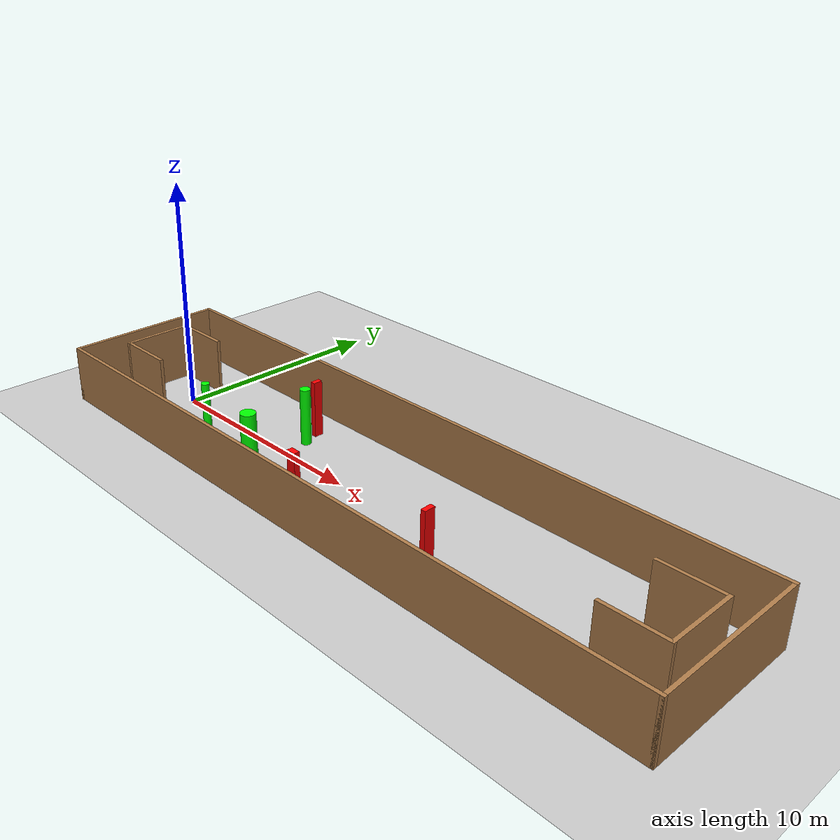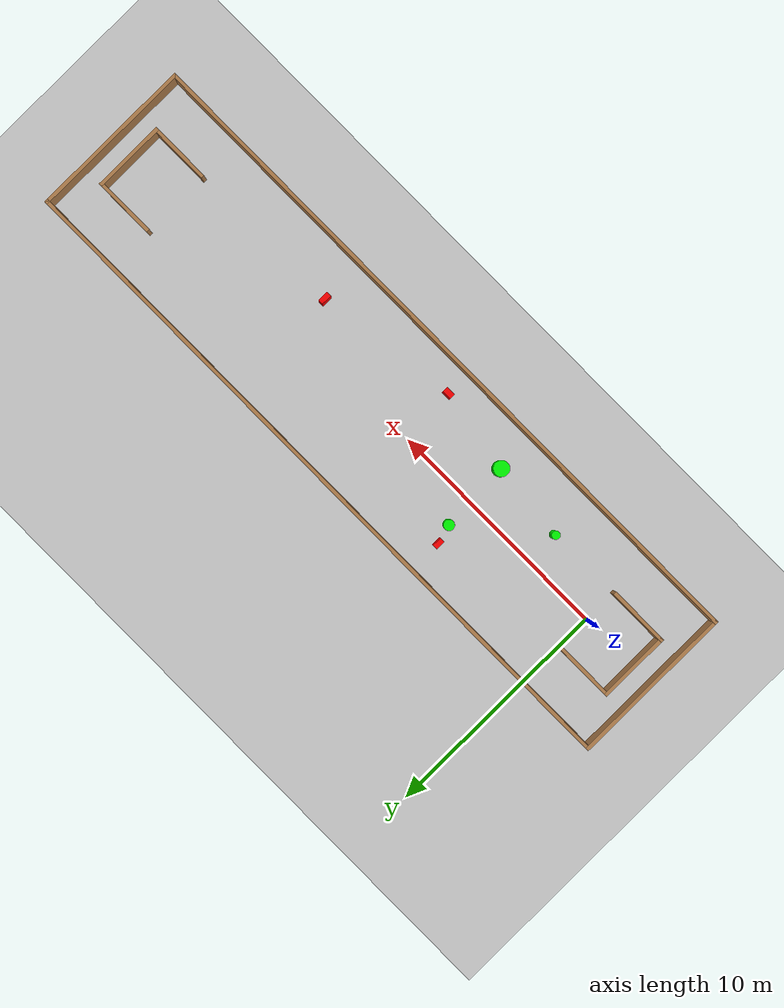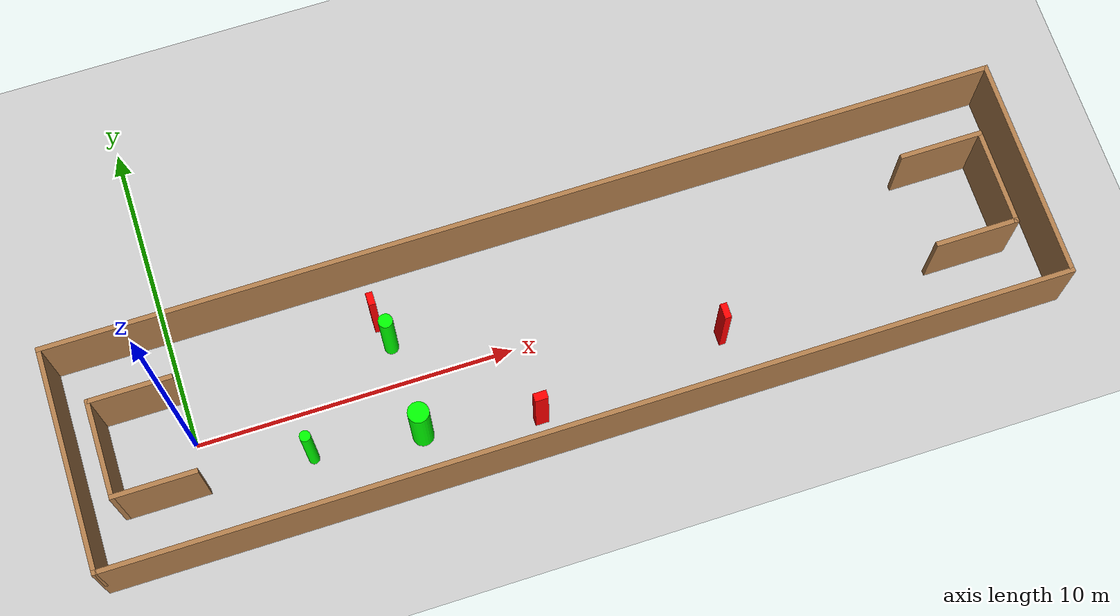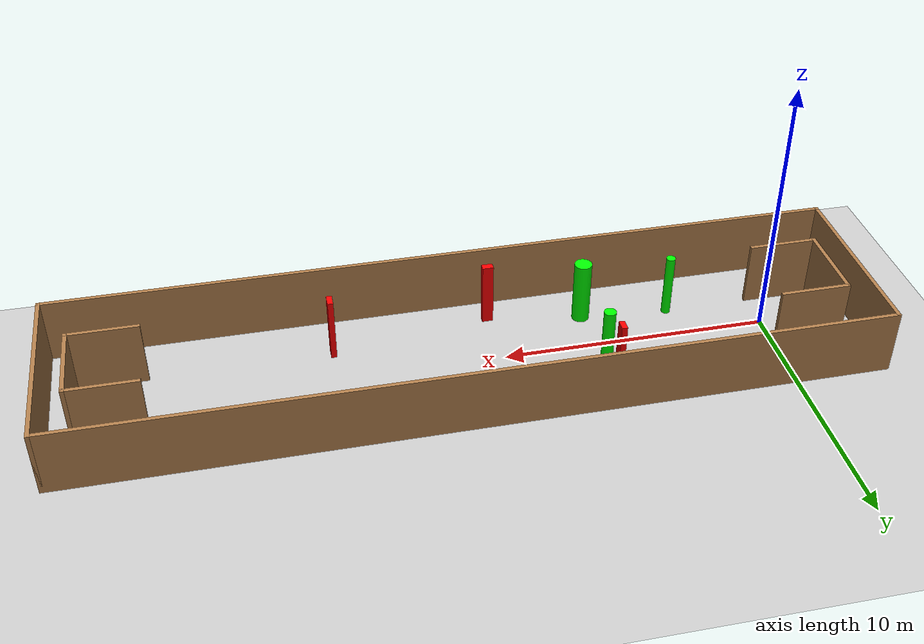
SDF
<sdf version="1.7">
 <world name="default">
  <light name="sun" type="directional">
   <pose>0 0 10 0 -0 0</pose>
   <diffuse>0.8 0.8 0.8 1</diffuse>
   <specular>0.2 0.2 0.2 1</specular>
   <attenuation>
    <range>1000</range>
    <constant>0.9</constant>
    <linear>0.01</linear>
    <quadratic>0.001</quadratic>
   </attenuation>
   <direction>-0.5 0.1 -0.9</direction>
   <spot><inner_angle>0</inner_angle><outer_angle>0</outer_angle><falloff>0</falloff></spot>
  </light>
  <model name="ground_plane">
   <static>1</static>
   <link name="link">
    <collision name="collision">
     <geometry><plane><normal>0 0 1</normal><size>100 100</size></plane></geometry>
     <surface>
      <contact><collide_bitmask>65535</collide_bitmask></contact>
      <friction><ode><mu>100</mu><mu2>50</mu2></ode></friction>
     </surface>
    </collision>
    <visual name="visual">
     <cast_shadows>0</cast_shadows>
     <geometry><plane><normal>0 0 1</normal><size>100 100</size></plane></geometry>
     <material>
      <script><uri>file://media/materials/scripts/gazebo.material</uri><name>Gazebo/Grey</name></script>
     </material>
    </visual>
   </link>
  </model>
  <gravity>0 0 -9.8</gravity>
  <magnetic_field>6e-06 2.3e-05 -4.2e-05</magnetic_field>
  <atmosphere type="adiabatic"/>
  <physics type="ode">
   <max_step_size>0.001</max_step_size>
   <real_time_factor>1</real_time_factor>
   <real_time_update_rate>1000</real_time_update_rate>
  </physics>
  <scene><ambient>0.4 0.4 0.4 1</ambient><background>0.7 0.7 0.7 1</background><shadows>1</shadows></scene>
  <spherical_coordinates>
   <surface_model>EARTH_WGS84</surface_model>
   <latitude_deg>0</latitude_deg>
   <longitude_deg>0</longitude_deg>
   <elevation>0</elevation>
   <heading_deg>0</heading_deg>
  </spherical_coordinates>
  <model name="my_base_walls">
   <link name="Wall_0">
    <collision name="Wall_0_Collision">
     <geometry><box><size>7.15 0.15 2.5</size></box></geometry>
     <pose>0 0 1.25 0 -0 0</pose>
    </collision>
    <visual name="Wall_0_Visual">
     <pose>0 0 1.25 0 -0 0</pose>
     <geometry><box><size>7.15 0.15 2.5</size></box></geometry>
     <material>
      <script><uri>file://media/materials/scripts/gazebo.material</uri><name>Gazebo/Wood</name></script>
      <ambient>1 1 1 1</ambient>
     </material>
     <meta><layer>0</layer></meta>
    </visual>
    <pose>-15 0 0 0 -0 1.5708</pose>
   </link>
   <link name="Wall_10">
    <collision name="Wall_10_Collision">
     <geometry><box><size>2.65 0.15 2.5</size></box></geometry>
     <pose>0 0 1.25 0 -0 0</pose>
    </collision>
    <visual name="Wall_10_Visual">
     <pose>0 0 1.25 0 -0 0</pose>
     <geometry><box><size>2.65 0.15 2.5</size></box></geometry>
     <material>
      <script><uri>file://media/materials/scripts/gazebo.material</uri><name>Gazebo/Wood</name></script>
      <ambient>1 1 1 1</ambient>
     </material>
     <meta><layer>0</layer></meta>
    </visual>
    <pose>-12.75 -1.5 0 0 -0 0</pose>
   </link>
   <link name="Wall_12">
    <collision name="Wall_12_Collision">
     <geometry><box><size>2.65 0.15 2.5</size></box></geometry>
     <pose>0 0 1.25 0 -0 0</pose>
    </collision>
    <visual name="Wall_12_Visual">
     <pose>0 0 1.25 0 -0 0</pose>
     <geometry><box><size>2.65 0.15 2.5</size></box></geometry>
     <material>
      <script><uri>file://media/materials/scripts/gazebo.material</uri><name>Gazebo/Wood</name></script>
      <ambient>1 1 1 1</ambient>
     </material>
     <meta><layer>0</layer></meta>
    </visual>
    <pose>-12.75 1.5 0 0 -0 0</pose>
   </link>
   <link name="Wall_14">
    <collision name="Wall_14_Collision">
     <geometry><box><size>3.15 0.15 2.5</size></box></geometry>
     <pose>0 0 1.25 0 -0 0</pose>
    </collision>
    <visual name="Wall_14_Visual">
     <pose>0 0 1.25 0 -0 0</pose>
     <geometry><box><size>3.15 0.15 2.5</size></box></geometry>
     <material>
      <script><uri>file://media/materials/scripts/gazebo.material</uri><name>Gazebo/Wood</name></script>
      <ambient>1 1 1 1</ambient>
     </material>
     <meta><layer>0</layer></meta>
    </visual>
    <pose>14 0 0 0 -0 -1.5708</pose>
   </link>
   <link name="Wall_15">
    <collision name="Wall_15_Collision">
     <geometry><box><size>2.65 0.15 2.5</size></box></geometry>
     <pose>0 0 1.25 0 -0 0</pose>
    </collision>
    <visual name="Wall_15_Visual">
     <pose>0 0 1.25 0 -0 0</pose>
     <geometry><box><size>2.65 0.15 2.5</size></box></geometry>
     <material>
      <script><uri>file://media/materials/scripts/gazebo.material</uri><name>Gazebo/Wood</name></script>
      <ambient>1 1 1 1</ambient>
     </material>
     <meta><layer>0</layer></meta>
    </visual>
    <pose>12.75 -1.5 0 0 -0 3.14159</pose>
   </link>
   <link name="Wall_17">
    <collision name="Wall_17_Collision">
     <geometry><box><size>2.65 0.15 2.5</size></box></geometry>
     <pose>0 0 1.25 0 -0 0</pose>
    </collision>
    <visual name="Wall_17_Visual">
     <pose>0 0 1.25 0 -0 0</pose>
     <geometry><box><size>2.65 0.15 2.5</size></box></geometry>
     <material>
      <script><uri>file://media/materials/scripts/gazebo.material</uri><name>Gazebo/Wood</name></script>
      <ambient>1 1 1 1</ambient>
     </material>
     <meta><layer>0</layer></meta>
    </visual>
    <pose>12.75 1.5 0 0 -0 3.14159</pose>
   </link>
   <link name="Wall_2">
    <collision name="Wall_2_Collision">
     <geometry><box><size>30.15 0.15 2.5</size></box></geometry>
     <pose>0 0 1.25 0 -0 0</pose>
    </collision>
    <visual name="Wall_2_Visual">
     <pose>0 0 1.25 0 -0 0</pose>
     <geometry><box><size>30.15 0.15 2.5</size></box></geometry>
     <material>
      <script><uri>file://media/materials/scripts/gazebo.material</uri><name>Gazebo/Wood</name></script>
      <ambient>1 1 1 1</ambient>
     </material>
     <meta><layer>0</layer></meta>
    </visual>
    <pose>-0 -3.5 0 0 -0 0</pose>
   </link>
   <link name="Wall_4">
    <collision name="Wall_4_Collision">
     <geometry><box><size>30.15 0.15 2.5</size></box></geometry>
     <pose>0 0 1.25 0 -0 0</pose>
    </collision>
    <visual name="Wall_4_Visual">
     <pose>0 0 1.25 0 -0 0</pose>
     <geometry><box><size>30.15 0.15 2.5</size></box></geometry>
     <material>
      <script><uri>file://media/materials/scripts/gazebo.material</uri><name>Gazebo/Wood</name></script>
      <ambient>1 1 1 1</ambient>
     </material>
     <meta><layer>0</layer></meta>
    </visual>
    <pose>-0 3.5 0 0 -0 0</pose>
   </link>
   <link name="Wall_6">
    <collision name="Wall_6_Collision">
     <geometry><box><size>7.15 0.15 2.5</size></box></geometry>
     <pose>0 0 1.25 0 -0 0</pose>
    </collision>
    <visual name="Wall_6_Visual">
     <pose>0 0 1.25 0 -0 0</pose>
     <geometry><box><size>7.15 0.15 2.5</size></box></geometry>
     <material>
      <script><uri>file://media/materials/scripts/gazebo.material</uri><name>Gazebo/Wood</name></script>
      <ambient>1 1 1 1</ambient>
     </material>
     <meta><layer>0</layer></meta>
    </visual>
    <pose>15 0 0 0 -0 -1.5708</pose>
   </link>
   <link name="Wall_9">
    <collision name="Wall_9_Collision">
     <geometry><box><size>3.15 0.15 2.5</size></box></geometry>
     <pose>0 0 1.25 0 -0 0</pose>
    </collision>
    <visual name="Wall_9_Visual">
     <pose>0 0 1.25 0 -0 0</pose>
     <geometry><box><size>3.15 0.15 2.5</size></box></geometry>
     <material>
      <script><uri>file://media/materials/scripts/gazebo.material</uri><name>Gazebo/Wood</name></script>
      <ambient>1 1 1 1</ambient>
     </material>
     <meta><layer>0</layer></meta>
    </visual>
    <pose>-14 0 0 0 -0 -1.5708</pose>
   </link>
   <static>1</static>
   <pose>11.5 0 0 0 -0 0</pose>
  </model>
  <model name="cylinder1">
   <static>1</static>
   <link name="link">
    <inertial>
     <mass>1</mass>
     <inertia><ixx>0.5</ixx><ixy>0</ixy><ixz>0</ixz><iyy>0.5</iyy><iyz>0</iyz><izz>1</izz></inertia>
    </inertial>
    <collision name="collision">
     <geometry><cylinder><radius>0.22451615352294346</radius><length>2.5</length></cylinder></geometry>
    </collision>
    <visual name="visual">
     <geometry><cylinder><radius>0.22451615352294346</radius><length>2.5</length></cylinder></geometry>
     <material>
      <ambient>0 1 0 1</ambient>
      <diffuse>0 1 0 1</diffuse>
      <specular>0.1 0.1 0.1 1</specular>
      <emissive>0 0 0 0</emissive>
     </material>
    </visual>
   </link>
   <pose>6.499904036353744 1.2292899753554272 1.25 0 0 0</pose>
  </model>
  <model name="cylinder2">
   <static>1</static>
   <link name="link">
    <inertial>
     <mass>1</mass>
     <inertia><ixx>0.5</ixx><ixy>0</ixy><ixz>0</ixz><iyy>0.5</iyy><iyz>0</iyz><izz>1</izz></inertia>
    </inertial>
    <collision name="collision">
     <geometry><cylinder><radius>0.3314965606161774</radius><length>2.5</length></cylinder></geometry>
    </collision>
    <visual name="visual">
     <geometry><cylinder><radius>0.3314965606161774</radius><length>2.5</length></cylinder></geometry>
     <material>
      <ambient>0 1 0 1</ambient>
      <diffuse>0 1 0 1</diffuse>
      <specular>0.1 0.1 0.1 1</specular>
      <emissive>0 0 0 0</emissive>
     </material>
    </visual>
   </link>
   <pose>6.6259564358439 -1.7741006872171823 1.25 0 0 0</pose>
  </model>
  <model name="cylinder3">
   <static>1</static>
   <link name="link">
    <inertial>
     <mass>1</mass>
     <inertia><ixx>0.5</ixx><ixy>0</ixy><ixz>0</ixz><iyy>0.5</iyy><iyz>0</iyz><izz>1</izz></inertia>
    </inertial>
    <collision name="collision">
     <geometry><cylinder><radius>0.1728237914768358</radius><length>2.5</length></cylinder></geometry>
    </collision>
    <visual name="visual">
     <geometry><cylinder><radius>0.1728237914768358</radius><length>2.5</length></cylinder></geometry>
     <material>
      <ambient>0 1 0 1</ambient>
      <diffuse>0 1 0 1</diffuse>
      <specular>0.1 0.1 0.1 1</specular>
      <emissive>0 0 0 0</emissive>
     </material>
    </visual>
   </link>
   <pose>3.2865544723311935 -1.4562964027881176 1.25 0 0 0</pose>
  </model>
  <model name="box1">
   <static>1</static>
   <link name="link">
    <inertial>
     <mass>1</mass>
     <inertia><ixx>0.083</ixx><ixy>0</ixy><ixz>0</ixz><iyy>0.083</iyy><iyz>0</iyz><izz>0.083</izz></inertia>
    </inertial>
    <collision name="collision">
     <geometry><box><size>0.21582267080164508 0.40613898136836785 2.5</size></box></geometry>
    </collision>
    <visual name="visual">
     <geometry><box><size>0.21582267080164508 0.40613898136836785 2.5</size></box></geometry>
     <material>
      <ambient>1 0 0 1</ambient>
      <diffuse>1 0 0 1</diffuse>
      <specular>0.1 0.1 0.1 1</specular>
      <emissive>0 0 0 0</emissive>
     </material>
    </visual>
    <sensor name="my_contact" type="contact">
     <contact><collision>box_collision</collision><topic>__default_topic__</topic></contact>
    </sensor>
   </link>
   <pose>6.270422387703945 2.0338657291713726 1.25 0 0 0</pose>
  </model>
  <model name="box2">
   <static>1</static>
   <link name="link">
    <inertial>
     <mass>1</mass>
     <inertia><ixx>0.083</ixx><ixy>0</ixy><ixz>0</ixz><iyy>0.083</iyy><iyz>0</iyz><izz>0.083</izz></inertia>
    </inertial>
    <collision name="collision">
     <geometry><box><size>0.41724001227718593 0.26004575001794333 2.5</size></box></geometry>
    </collision>
    <visual name="visual">
     <geometry><box><size>0.41724001227718593 0.26004575001794333 2.5</size></box></geometry>
     <material>
      <ambient>1 0 0 1</ambient>
      <diffuse>1 0 0 1</diffuse>
      <specular>0.1 0.1 0.1 1</specular>
      <emissive>0 0 0 0</emissive>
     </material>
    </visual>
    <sensor name="my_contact" type="contact">
     <contact><collision>box_collision</collision><topic>__default_topic__</topic></contact>
    </sensor>
   </link>
   <pose>10.172527121755836 -2.3897996898024525 1.25 0 0 0</pose>
  </model>
  <model name="box3">
   <static>1</static>
   <link name="link">
    <inertial>
     <mass>1</mass>
     <inertia><ixx>0.083</ixx><ixy>0</ixy><ixz>0</ixz><iyy>0.083</iyy><iyz>0</iyz><izz>0.083</izz></inertia>
    </inertial>
    <collision name="collision">
     <geometry><box><size>0.21159331303149817 0.4768790691847183 2.5</size></box></geometry>
    </collision>
    <visual name="visual">
     <geometry><box><size>0.21159331303149817 0.4768790691847183 2.5</size></box></geometry>
     <material>
      <ambient>1 0 0 1</ambient>
      <diffuse>1 0 0 1</diffuse>
      <specular>0.1 0.1 0.1 1</specular>
      <emissive>0 0 0 0</emissive>
     </material>
    </visual>
    <sensor name="my_contact" type="contact">
     <contact><collision>box_collision</collision><topic>__default_topic__</topic></contact>
    </sensor>
   </link>
   <pose>16.209276250352467 -1.5534325582172537 1.25 0 0 0</pose>
  </model>
 </world>
</sdf>
